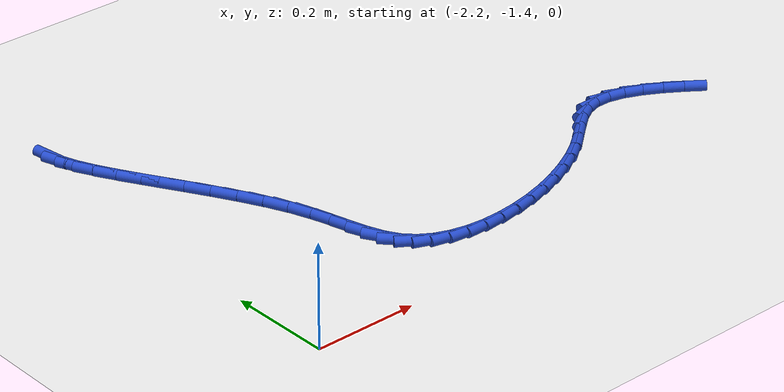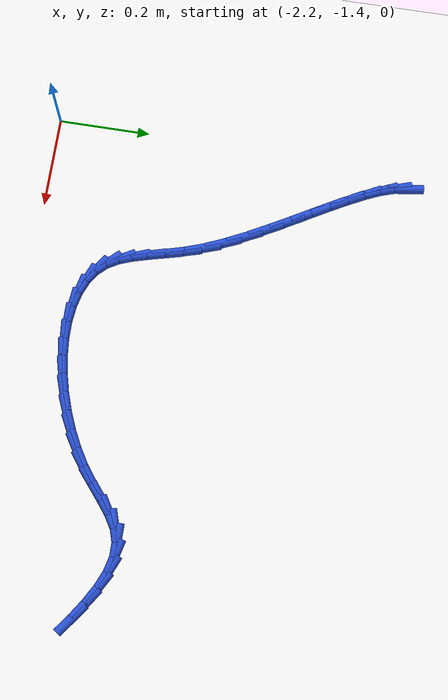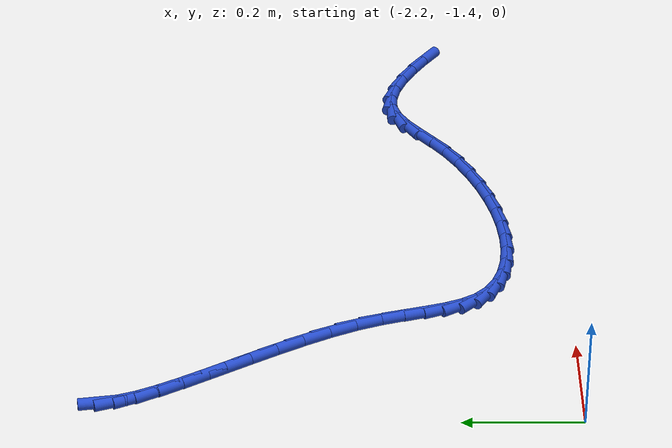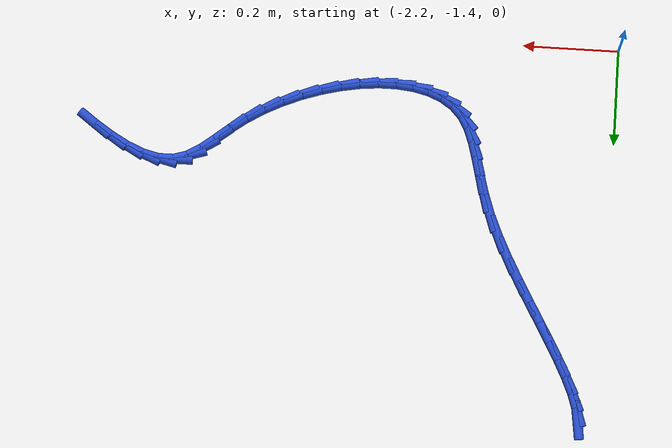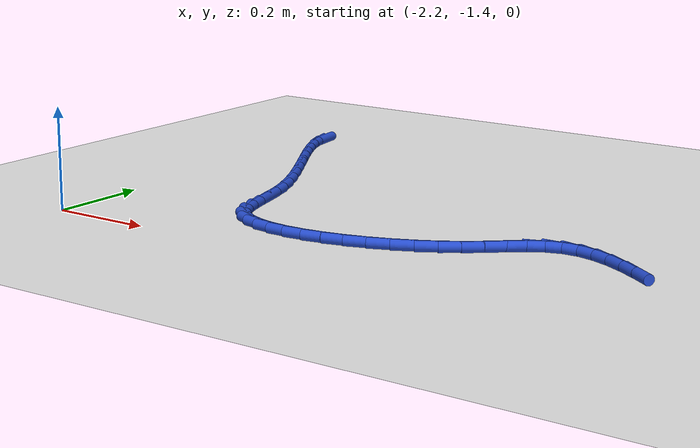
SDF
<sdf version="1.6">
 <world name="default">
  <model name="ground_plane">
   <static>1</static>
   <link name="link">
    <collision name="collision">
     <geometry><plane><normal>0 0 1</normal><size>100 100</size></plane></geometry>
     <surface><friction><ode><mu>100</mu><mu2>50</mu2></ode></friction></surface>
    </collision>
    <visual name="visual">
     <cast_shadows>0</cast_shadows>
     <geometry><plane><normal>0 0 1</normal><size>100 100</size></plane></geometry>
     <material>
      <script><uri>file://media/materials/scripts/gazebo.material</uri><name>Gazebo/WhiteGlow</name></script>
     </material>
    </visual>
   </link>
  </model>
  <model name="line">
   <link name="link_141">
    <pose>-2.154538932046482 -0.6215567375628134 0.01 0 1.57 -1.4311310079449593</pose>
    <collision name="collision">
     <geometry><cylinder><radius>0.01</radius><length>0.08</length></cylinder></geometry>
    </collision>
    <visual name="visual">
     <material>
      <script><name>Gazebo/Blue</name><uri>file://media/materials/scripts/gazebo.material</uri></script>
     </material>
     <geometry><cylinder><radius>0.01</radius><length>0.08</length></cylinder></geometry>
    </visual>
   </link>
   <link name="link_142">
    <pose>-2.151103685385593 -0.6459928764320074 0.01 0 1.57 -1.2529561712218749</pose>
    <collision name="collision">
     <geometry><cylinder><radius>0.01</radius><length>0.08</length></cylinder></geometry>
    </collision>
    <visual name="visual">
     <material>
      <script><name>Gazebo/Blue</name><uri>file://media/materials/scripts/gazebo.material</uri></script>
     </material>
     <geometry><cylinder><radius>0.01</radius><length>0.08</length></cylinder></geometry>
    </visual>
   </link>
   <link name="link_143">
    <pose>-2.1415632328836502 -0.6749917341333496 0.01 0 1.57 -1.153243136770327</pose>
    <collision name="collision">
     <geometry><cylinder><radius>0.01</radius><length>0.08</length></cylinder></geometry>
    </collision>
    <visual name="visual">
     <material>
      <script><name>Gazebo/Blue</name><uri>file://media/materials/scripts/gazebo.material</uri></script>
     </material>
     <geometry><cylinder><radius>0.01</radius><length>0.08</length></cylinder></geometry>
    </visual>
   </link>
   <link name="link_144">
    <pose>-2.12694859035733 -0.7079342335735962 0.01 0 1.57 -1.0956507376314124</pose>
    <collision name="collision">
     <geometry><cylinder><radius>0.01</radius><length>0.08</length></cylinder></geometry>
    </collision>
    <visual name="visual">
     <material>
      <script><name>Gazebo/Blue</name><uri>file://media/materials/scripts/gazebo.material</uri></script>
     </material>
     <geometry><cylinder><radius>0.01</radius><length>0.08</length></cylinder></geometry>
    </visual>
   </link>
   <link name="link_145">
    <pose>-2.1082907736233123 -0.7442012976595039 0.01 0 1.57 -1.063334030433427</pose>
    <collision name="collision">
     <geometry><cylinder><radius>0.01</radius><length>0.08</length></cylinder></geometry>
    </collision>
    <visual name="visual">
     <material>
      <script><name>Gazebo/Blue</name><uri>file://media/materials/scripts/gazebo.material</uri></script>
     </material>
     <geometry><cylinder><radius>0.01</radius><length>0.08</length></cylinder></geometry>
    </visual>
   </link>
   <link name="link_146">
    <pose>-2.0866207984982754 -0.7831738492978302 0.01 0 1.57 -1.048189713362039</pose>
    <collision name="collision">
     <geometry><cylinder><radius>0.01</radius><length>0.08</length></cylinder></geometry>
    </collision>
    <visual name="visual">
     <material>
      <script><name>Gazebo/Blue</name><uri>file://media/materials/scripts/gazebo.material</uri></script>
     </material>
     <geometry><cylinder><radius>0.01</radius><length>0.08</length></cylinder></geometry>
    </visual>
   </link>
   <link name="link_147">
    <pose>-2.062969680798897 -0.8242328113953314 0.01 0 1.57 -1.0463395138791134</pose>
    <collision name="collision">
     <geometry><cylinder><radius>0.01</radius><length>0.08</length></cylinder></geometry>
    </collision>
    <visual name="visual">
     <material>
      <script><name>Gazebo/Blue</name><uri>file://media/materials/scripts/gazebo.material</uri></script>
     </material>
     <geometry><cylinder><radius>0.01</radius><length>0.08</length></cylinder></geometry>
    </visual>
   </link>
   <link name="link_148">
    <pose>-2.0383684363418557 -0.8667591068587625 0.01 0 1.57 -1.056269806245119</pose>
    <collision name="collision">
     <geometry><cylinder><radius>0.01</radius><length>0.08</length></cylinder></geometry>
    </collision>
    <visual name="visual">
     <material>
      <script><name>Gazebo/Blue</name><uri>file://media/materials/scripts/gazebo.material</uri></script>
     </material>
     <geometry><cylinder><radius>0.01</radius><length>0.08</length></cylinder></geometry>
    </visual>
   </link>
   <link name="link_149">
    <pose>-2.013848080943833 -0.9101336585948818 0.01 0 1.57 -1.0781088918275075</pose>
    <collision name="collision">
     <geometry><cylinder><radius>0.01</radius><length>0.08</length></cylinder></geometry>
    </collision>
    <visual name="visual">
     <material>
      <script><name>Gazebo/Blue</name><uri>file://media/materials/scripts/gazebo.material</uri></script>
     </material>
     <geometry><cylinder><radius>0.01</radius><length>0.08</length></cylinder></geometry>
    </visual>
   </link>
   <link name="link_150">
    <pose>-1.9904396304215033 -0.9537373895104451 0.01 0 1.57 -1.1134886187383253</pose>
    <collision name="collision">
     <geometry><cylinder><radius>0.01</radius><length>0.08</length></cylinder></geometry>
    </collision>
    <visual name="visual">
     <material>
      <script><name>Gazebo/Blue</name><uri>file://media/materials/scripts/gazebo.material</uri></script>
     </material>
     <geometry><cylinder><radius>0.01</radius><length>0.08</length></cylinder></geometry>
    </visual>
   </link>
   <link name="link_151">
    <pose>-1.9691741005915473 -0.9969512225122095 0.01 0 1.57 -1.1658285365225627</pose>
    <collision name="collision">
     <geometry><cylinder><radius>0.01</radius><length>0.08</length></cylinder></geometry>
    </collision>
    <visual name="visual">
     <material>
      <script><name>Gazebo/Blue</name><uri>file://media/materials/scripts/gazebo.material</uri></script>
     </material>
     <geometry><cylinder><radius>0.01</radius><length>0.08</length></cylinder></geometry>
    </visual>
   </link>
   <link name="link_152">
    <pose>-1.951082507270644 -1.0391560805069313 0.01 0 1.57 -1.237563324063099</pose>
    <collision name="collision">
     <geometry><cylinder><radius>0.01</radius><length>0.08</length></cylinder></geometry>
    </collision>
    <visual name="visual">
     <material>
      <script><name>Gazebo/Blue</name><uri>file://media/materials/scripts/gazebo.material</uri></script>
     </material>
     <geometry><cylinder><radius>0.01</radius><length>0.08</length></cylinder></geometry>
    </visual>
   </link>
   <link name="link_153">
    <pose>-1.9370344638226182 -1.0797408005303795 0.01 0 1.57 -1.298056927239884</pose>
    <collision name="collision">
     <geometry><cylinder><radius>0.01</radius><length>0.08</length></cylinder></geometry>
    </collision>
    <visual name="visual">
     <material>
      <script><name>Gazebo/Blue</name><uri>file://media/materials/scripts/gazebo.material</uri></script>
     </material>
     <geometry><cylinder><radius>0.01</radius><length>0.08</length></cylinder></geometry>
    </visual>
   </link>
   <link name="link_154">
    <pose>-1.9262844929190162 -1.118173413186197 0.01 0 1.57 -1.3211198890827272</pose>
    <collision name="collision">
     <geometry><cylinder><radius>0.01</radius><length>0.08</length></cylinder></geometry>
    </collision>
    <visual name="visual">
     <material>
      <script><name>Gazebo/Blue</name><uri>file://media/materials/scripts/gazebo.material</uri></script>
     </material>
     <geometry><cylinder><radius>0.01</radius><length>0.08</length></cylinder></geometry>
    </visual>
   </link>
   <link name="link_155">
    <pose>-1.9171570845160455 -1.1539675518477777 0.01 0 1.57 -1.2965401398124943</pose>
    <collision name="collision">
     <geometry><cylinder><radius>0.01</radius><length>0.08</length></cylinder></geometry>
    </collision>
    <visual name="visual">
     <material>
      <script><name>Gazebo/Blue</name><uri>file://media/materials/scripts/gazebo.material</uri></script>
     </material>
     <geometry><cylinder><radius>0.01</radius><length>0.08</length></cylinder></geometry>
    </visual>
   </link>
   <link name="link_156">
    <pose>-1.9079655620690916 -1.1866373974212607 0.01 0 1.57 -1.210671350527017</pose>
    <collision name="collision">
     <geometry><cylinder><radius>0.01</radius><length>0.08</length></cylinder></geometry>
    </collision>
    <visual name="visual">
     <material>
      <script><name>Gazebo/Blue</name><uri>file://media/materials/scripts/gazebo.material</uri></script>
     </material>
     <geometry><cylinder><radius>0.01</radius><length>0.08</length></cylinder></geometry>
    </visual>
   </link>
   <link name="link_157">
    <pose>-1.8970232490335357 -1.2156971308127846 0.01 0 1.57 -1.0481918913516608</pose>
    <collision name="collision">
     <geometry><cylinder><radius>0.01</radius><length>0.08</length></cylinder></geometry>
    </collision>
    <visual name="visual">
     <material>
      <script><name>Gazebo/Blue</name><uri>file://media/materials/scripts/gazebo.material</uri></script>
     </material>
     <geometry><cylinder><radius>0.01</radius><length>0.08</length></cylinder></geometry>
    </visual>
   </link>
   <link name="link_158">
    <pose>-1.8826434688647617 -1.2406609329284897 0.01 0 1.57 -0.8137451766766639</pose>
    <collision name="collision">
     <geometry><cylinder><radius>0.01</radius><length>0.08</length></cylinder></geometry>
    </collision>
    <visual name="visual">
     <material>
      <script><name>Gazebo/Blue</name><uri>file://media/materials/scripts/gazebo.material</uri></script>
     </material>
     <geometry><cylinder><radius>0.01</radius><length>0.08</length></cylinder></geometry>
    </visual>
   </link>
   <link name="link_159">
    <pose>-1.8633328078552263 -1.2610986434512514 0.01 0 1.57 -0.5803786643674078</pose>
    <collision name="collision">
     <geometry><cylinder><radius>0.01</radius><length>0.08</length></cylinder></geometry>
    </collision>
    <visual name="visual">
     <material>
      <script><name>Gazebo/Blue</name><uri>file://media/materials/scripts/gazebo.material</uri></script>
     </material>
     <geometry><cylinder><radius>0.01</radius><length>0.08</length></cylinder></geometry>
    </visual>
   </link>
   <link name="link_160">
    <pose>-1.8390741649057922 -1.277005273064784 0.01 0 1.57 -0.385015085178584</pose>
    <collision name="collision">
     <geometry><cylinder><radius>0.01</radius><length>0.08</length></cylinder></geometry>
    </collision>
    <visual name="visual">
     <material>
      <script><name>Gazebo/Blue</name><uri>file://media/materials/scripts/gazebo.material</uri></script>
     </material>
     <geometry><cylinder><radius>0.01</radius><length>0.08</length></cylinder></geometry>
    </visual>
   </link>
   <link name="link_161">
    <pose>-1.8105313788054345 -1.2885719398978608 0.01 0 1.57 -0.22672392892697205</pose>
    <collision name="collision">
     <geometry><cylinder><radius>0.01</radius><length>0.08</length></cylinder></geometry>
    </collision>
    <visual name="visual">
     <material>
      <script><name>Gazebo/Blue</name><uri>file://media/materials/scripts/gazebo.material</uri></script>
     </material>
     <geometry><cylinder><radius>0.01</radius><length>0.08</length></cylinder></geometry>
    </visual>
   </link>
   <link name="link_162">
    <pose>-1.778371935164224 -1.295990812346362 0.01 0 1.57 -0.09832567832527987</pose>
    <collision name="collision">
     <geometry><cylinder><radius>0.01</radius><length>0.08</length></cylinder></geometry>
    </collision>
    <visual name="visual">
     <material>
      <script><name>Gazebo/Blue</name><uri>file://media/materials/scripts/gazebo.material</uri></script>
     </material>
     <geometry><cylinder><radius>0.01</radius><length>0.08</length></cylinder></geometry>
    </visual>
   </link>
   <link name="link_163">
    <pose>-1.7432633195922345 -1.2994540588061694 0.01 0 1.57 0.008028945123395184</pose>
    <collision name="collision">
     <geometry><cylinder><radius>0.01</radius><length>0.08</length></cylinder></geometry>
    </collision>
    <visual name="visual">
     <material>
      <script><name>Gazebo/Blue</name><uri>file://media/materials/scripts/gazebo.material</uri></script>
     </material>
     <geometry><cylinder><radius>0.01</radius><length>0.08</length></cylinder></geometry>
    </visual>
   </link>
   <link name="link_164">
    <pose>-1.705873017699539 -1.2991538476731652 0.01 0 1.57 0.09893372711360239</pose>
    <collision name="collision">
     <geometry><cylinder><radius>0.01</radius><length>0.08</length></cylinder></geometry>
    </collision>
    <visual name="visual">
     <material>
      <script><name>Gazebo/Blue</name><uri>file://media/materials/scripts/gazebo.material</uri></script>
     </material>
     <geometry><cylinder><radius>0.01</radius><length>0.08</length></cylinder></geometry>
    </visual>
   </link>
   <link name="link_165">
    <pose>-1.6668685150962101 -1.2952823473432309 0.01 0 1.57 0.17953276343966929</pose>
    <collision name="collision">
     <geometry><cylinder><radius>0.01</radius><length>0.08</length></cylinder></geometry>
    </collision>
    <visual name="visual">
     <material>
      <script><name>Gazebo/Blue</name><uri>file://media/materials/scripts/gazebo.material</uri></script>
     </material>
     <geometry><cylinder><radius>0.01</radius><length>0.08</length></cylinder></geometry>
    </visual>
   </link>
   <link name="link_166">
    <pose>-1.6269172973923207 -1.2880317262122483 0.01 0 1.57 0.2538477851779311</pose>
    <collision name="collision">
     <geometry><cylinder><radius>0.01</radius><length>0.08</length></cylinder></geometry>
    </collision>
    <visual name="visual">
     <material>
      <script><name>Gazebo/Blue</name><uri>file://media/materials/scripts/gazebo.material</uri></script>
     </material>
     <geometry><cylinder><radius>0.01</radius><length>0.08</length></cylinder></geometry>
    </visual>
   </link>
   <link name="link_167">
    <pose>-1.5866868501979416 -1.2775941526760983 0.01 0 1.57 0.325171759607391</pose>
    <collision name="collision">
     <geometry><cylinder><radius>0.01</radius><length>0.08</length></cylinder></geometry>
    </collision>
    <visual name="visual">
     <material>
      <script><name>Gazebo/Blue</name><uri>file://media/materials/scripts/gazebo.material</uri></script>
     </material>
     <geometry><cylinder><radius>0.01</radius><length>0.08</length></cylinder></geometry>
    </visual>
   </link>
   <link name="link_168">
    <pose>-1.546844659123148 -1.264161795130664 0.01 0 1.57 0.3964146295786495</pose>
    <collision name="collision">
     <geometry><cylinder><radius>0.01</radius><length>0.08</length></cylinder></geometry>
    </collision>
    <visual name="visual">
     <material>
      <script><name>Gazebo/Blue</name><uri>file://media/materials/scripts/gazebo.material</uri></script>
     </material>
     <geometry><cylinder><radius>0.01</radius><length>0.08</length></cylinder></geometry>
    </visual>
   </link>
   <link name="link_169">
    <pose>-1.5080582097780106 -1.2479268219718258 0.01 0 1.57 0.4703981374318308</pose>
    <collision name="collision">
     <geometry><cylinder><radius>0.01</radius><length>0.08</length></cylinder></geometry>
    </collision>
    <visual name="visual">
     <material>
      <script><name>Gazebo/Blue</name><uri>file://media/materials/scripts/gazebo.material</uri></script>
     </material>
     <geometry><cylinder><radius>0.01</radius><length>0.08</length></cylinder></geometry>
    </visual>
   </link>
   <link name="link_170">
    <pose>-1.4709949877726016 -1.2290814015954652 0.01 0 1.57 0.5501216351273192</pose>
    <collision name="collision">
     <geometry><cylinder><radius>0.01</radius><length>0.08</length></cylinder></geometry>
    </collision>
    <visual name="visual">
     <material>
      <script><name>Gazebo/Blue</name><uri>file://media/materials/scripts/gazebo.material</uri></script>
     </material>
     <geometry><cylinder><radius>0.01</radius><length>0.08</length></cylinder></geometry>
    </visual>
   </link>
   <link name="link_171">
    <pose>-1.436322478716996 -1.2078177023974648 0.01 0 1.57 0.6364665064249894</pose>
    <collision name="collision">
     <geometry><cylinder><radius>0.01</radius><length>0.08</length></cylinder></geometry>
    </collision>
    <visual name="visual">
     <material>
      <script><name>Gazebo/Blue</name><uri>file://media/materials/scripts/gazebo.material</uri></script>
     </material>
     <geometry><cylinder><radius>0.01</radius><length>0.08</length></cylinder></geometry>
    </visual>
   </link>
   <link name="link_172">
    <pose>-1.4046470556886823 -1.1844074760702397 0.01 0 1.57 0.6885403502596606</pose>
    <collision name="collision">
     <geometry><cylinder><radius>0.01</radius><length>0.08</length></cylinder></geometry>
    </collision>
    <visual name="visual">
     <material>
      <script><name>Gazebo/Blue</name><uri>file://media/materials/scripts/gazebo.material</uri></script>
     </material>
     <geometry><cylinder><radius>0.01</radius><length>0.08</length></cylinder></geometry>
    </visual>
   </link>
   <link name="link_173">
    <pose>-1.3755469177645188 -1.1604614055028242 0.01 0 1.57 0.6640914288199241</pose>
    <collision name="collision">
     <geometry><cylinder><radius>0.01</radius><length>0.08</length></cylinder></geometry>
    </collision>
    <visual name="visual">
     <material>
      <script><name>Gazebo/Blue</name><uri>file://media/materials/scripts/gazebo.material</uri></script>
     </material>
     <geometry><cylinder><radius>0.01</radius><length>0.08</length></cylinder></geometry>
    </visual>
   </link>
   <link name="link_174">
    <pose>-1.3477462377486302 -1.138702322324246 0.01 0 1.57 0.543949336586078</pose>
    <collision name="collision">
     <geometry><cylinder><radius>0.01</radius><length>0.08</length></cylinder></geometry>
    </collision>
    <visual name="visual">
     <material>
      <script><name>Gazebo/Blue</name><uri>file://media/materials/scripts/gazebo.material</uri></script>
     </material>
     <geometry><cylinder><radius>0.01</radius><length>0.08</length></cylinder></geometry>
    </visual>
   </link>
   <link name="link_175">
    <pose>-1.3199432819052637 -1.1218867947435467 0.01 0 1.57 0.3042087266348882</pose>
    <collision name="collision">
     <geometry><cylinder><radius>0.01</radius><length>0.08</length></cylinder></geometry>
    </collision>
    <visual name="visual">
     <material>
      <script><name>Gazebo/Blue</name><uri>file://media/materials/scripts/gazebo.material</uri></script>
     </material>
     <geometry><cylinder><radius>0.01</radius><length>0.08</length></cylinder></geometry>
    </visual>
   </link>
   <link name="link_176">
    <pose>-1.2908448212638493 -1.1127512240932134 0.01 0 1.57 0.005423430733197991</pose>
    <collision name="collision">
     <geometry><cylinder><radius>0.01</radius><length>0.08</length></cylinder></geometry>
    </collision>
    <visual name="visual">
     <material>
      <script><name>Gazebo/Blue</name><uri>file://media/materials/scripts/gazebo.material</uri></script>
     </material>
     <geometry><cylinder><radius>0.01</radius><length>0.08</length></cylinder></geometry>
    </visual>
   </link>
   <link name="link_177">
    <pose>-1.2597688366193998 -1.112582683990568 0.01 0 1.57 -0.23078593161000358</pose>
    <collision name="collision">
     <geometry><cylinder><radius>0.01</radius><length>0.08</length></cylinder></geometry>
    </collision>
    <visual name="visual">
     <material>
      <script><name>Gazebo/Blue</name><uri>file://media/materials/scripts/gazebo.material</uri></script>
     </material>
     <geometry><cylinder><radius>0.01</radius><length>0.08</length></cylinder></geometry>
    </visual>
   </link>
   <link name="link_178">
    <pose>-1.2270437801701428 -1.1202721734276242 0.01 0 1.57 -0.3964875906193838</pose>
    <collision name="collision">
     <geometry><cylinder><radius>0.01</radius><length>0.08</length></cylinder></geometry>
    </collision>
    <visual name="visual">
     <material>
      <script><name>Gazebo/Blue</name><uri>file://media/materials/scripts/gazebo.material</uri></script>
     </material>
     <geometry><cylinder><radius>0.01</radius><length>0.08</length></cylinder></geometry>
    </visual>
   </link>
   <link name="link_179">
    <pose>-1.1930928435123729 -1.1344860411321624 0.01 0 1.57 -0.5092293308736646</pose>
    <collision name="collision">
     <geometry><cylinder><radius>0.01</radius><length>0.08</length></cylinder></geometry>
    </collision>
    <visual name="visual">
     <material>
      <script><name>Gazebo/Blue</name><uri>file://media/materials/scripts/gazebo.material</uri></script>
     </material>
     <geometry><cylinder><radius>0.01</radius><length>0.08</length></cylinder></geometry>
    </visual>
   </link>
   <link name="link_180">
    <pose>-1.1583392182423857 -1.153890635831962 0.01 0 1.57 -0.58483499482704</pose>
    <collision name="collision">
     <geometry><cylinder><radius>0.01</radius><length>0.08</length></cylinder></geometry>
    </collision>
    <visual name="visual">
     <material>
      <script><name>Gazebo/Blue</name><uri>file://media/materials/scripts/gazebo.material</uri></script>
     </material>
     <geometry><cylinder><radius>0.01</radius><length>0.08</length></cylinder></geometry>
    </visual>
   </link>
   <link name="link_181">
    <pose>-1.1232060959564762 -1.1771523062548042 0.01 0 1.57 -0.6337275265472051</pose>
    <collision name="collision">
     <geometry><cylinder><radius>0.01</radius><length>0.08</length></cylinder></geometry>
    </collision>
    <visual name="visual">
     <material>
      <script><name>Gazebo/Blue</name><uri>file://media/materials/scripts/gazebo.material</uri></script>
     </material>
     <geometry><cylinder><radius>0.01</radius><length>0.08</length></cylinder></geometry>
    </visual>
   </link>
  </model>
 </world>
</sdf>
